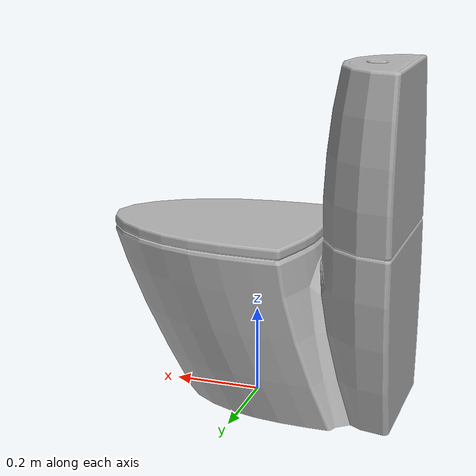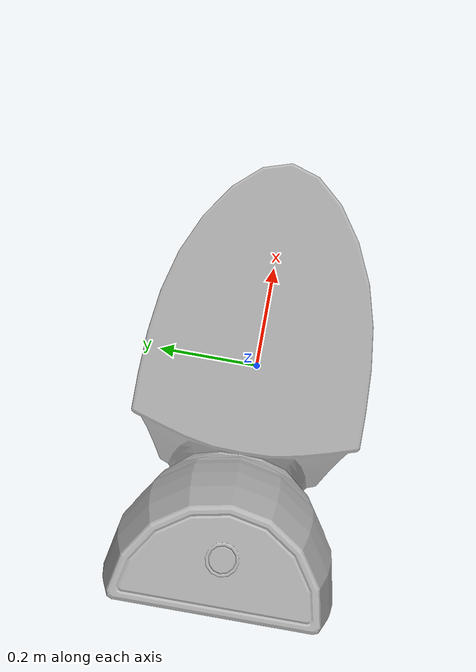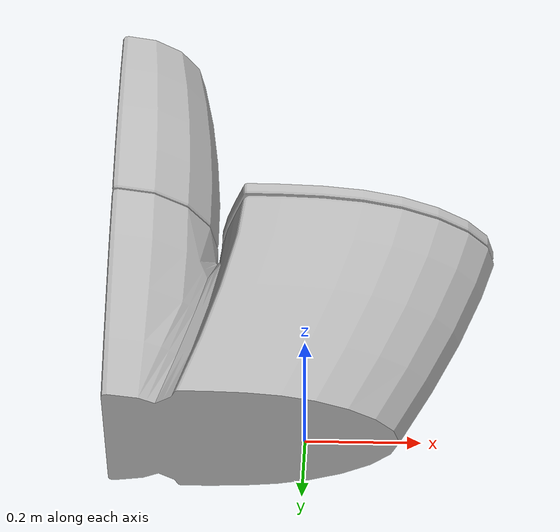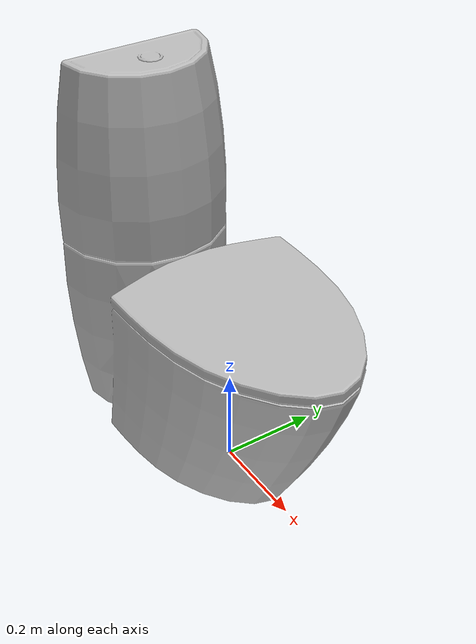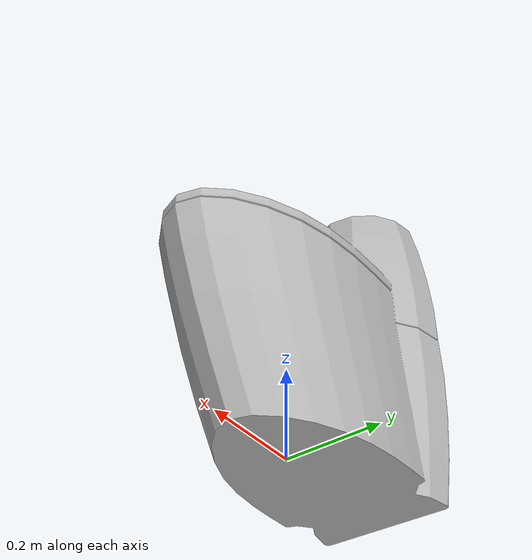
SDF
<?xml version='1.0'?>
<sdf version='1.4'>
  <model name='s__1250'>
    <pose>0 0 0 0 0 0</pose>
    <static>true</static>
    <link name='link'>
      <collision name='collision'>
        <pose>0 0 0 0 0 0</pose>
        <geometry>
          <box>
            <size>0.69 0.39 2</size>
          </box>
        </geometry>
      </collision>
      <visual name='visual'>
        <pose>0 0 0 0 0 0</pose>
        <geometry>
          <mesh><uri>model://s__1250/s__1250.dae</uri></mesh>
        </geometry>
      </visual>
    </link>
  </model>
</sdf>
